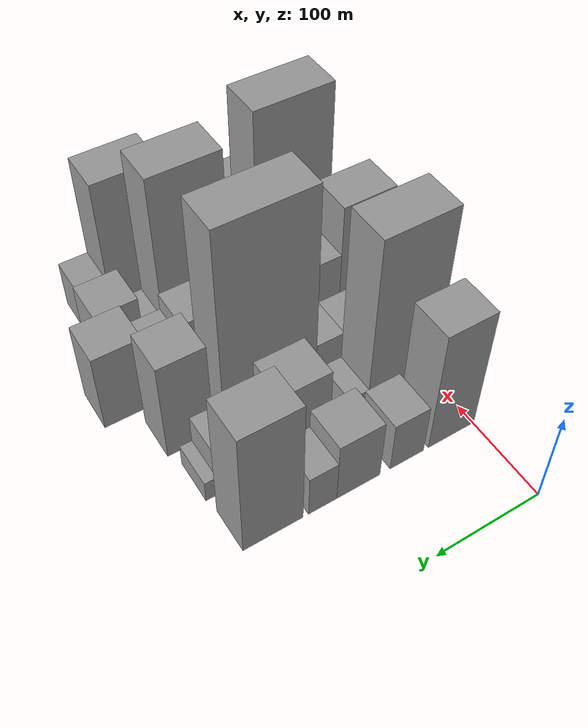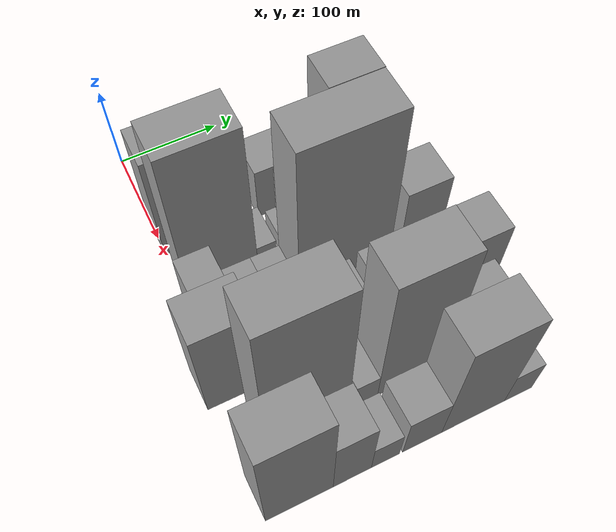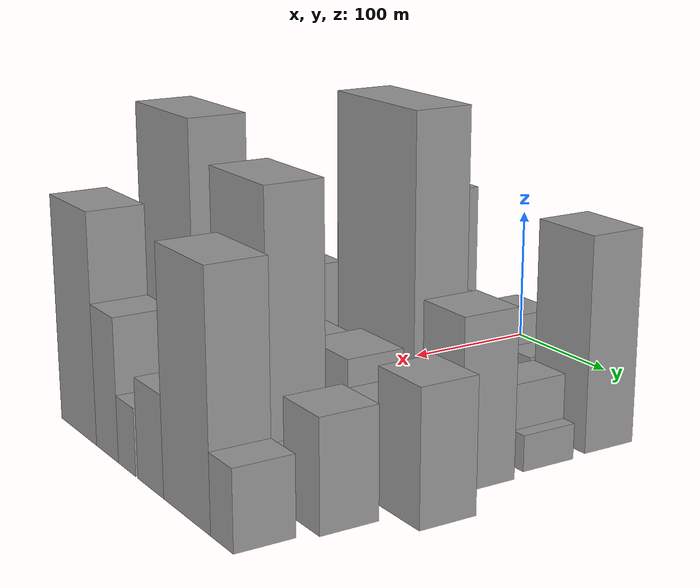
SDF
<sdf version="1.6">
 <world name="default">
  <model name="building_30">
   <static>1</static>
   <pose>100.0000 22.7070 0 0.000000 0.000000 0.000000</pose>
   <link name="link">
    <pose>0 0 69.00 0 0 0</pose>
    <collision name="collision"><geometry><box><size>40.0000 46.8853 138.0000</size></box></geometry></collision>
    <visual name="visual">
     <cast_shadows>0</cast_shadows>
     <geometry><box><size>40.0000 46.8853 138.0000</size></box></geometry>
     <material>
      <script>
       <uri>model://grey_wall/materials/scripts</uri>
       <uri>model://grey_wall/materials/textures</uri>
       <name>vrc/grey_wall</name>
      </script>
     </material>
    </visual>
   </link>
  </model>
  <model name="building_31">
   <static>1</static>
   <pose>100.0000 67.7144 0 0.000000 0.000000 0.000000</pose>
   <link name="link">
    <pose>0 0 28.50 0 0 0</pose>
    <collision name="collision"><geometry><box><size>40.0000 33.1295 57.0000</size></box></geometry></collision>
    <visual name="visual">
     <cast_shadows>0</cast_shadows>
     <geometry><box><size>40.0000 33.1295 57.0000</size></box></geometry>
     <material>
      <script>
       <uri>model://grey_wall/materials/scripts</uri>
       <uri>model://grey_wall/materials/textures</uri>
       <name>vrc/grey_wall</name>
      </script>
     </material>
    </visual>
   </link>
  </model>
  <model name="building_32">
   <static>1</static>
   <pose>100.0000 114.8831 0 0.000000 0.000000 0.000000</pose>
   <link name="link">
    <pose>0 0 34.50 0 0 0</pose>
    <collision name="collision"><geometry><box><size>40.0000 41.2078 69.0000</size></box></geometry></collision>
    <visual name="visual">
     <cast_shadows>0</cast_shadows>
     <geometry><box><size>40.0000 41.2078 69.0000</size></box></geometry>
     <material>
      <script>
       <uri>model://grey_wall/materials/scripts</uri>
       <uri>model://grey_wall/materials/textures</uri>
       <name>vrc/grey_wall</name>
      </script>
     </material>
    </visual>
   </link>
  </model>
  <model name="building_33">
   <static>1</static>
   <pose>100.0000 148.5015 0 0.000000 0.000000 0.000000</pose>
   <link name="link">
    <pose>0 0 24.00 0 0 0</pose>
    <collision name="collision"><geometry><box><size>40.0000 26.0290 48.0000</size></box></geometry></collision>
    <visual name="visual">
     <cast_shadows>0</cast_shadows>
     <geometry><box><size>40.0000 26.0290 48.0000</size></box></geometry>
     <material>
      <script>
       <uri>model://grey_wall/materials/scripts</uri>
       <uri>model://grey_wall/materials/textures</uri>
       <name>vrc/grey_wall</name>
      </script>
     </material>
    </visual>
   </link>
  </model>
  <model name="building_34">
   <static>1</static>
   <pose>100.0000 193.2299 0 0.000000 0.000000 0.000000</pose>
   <link name="link">
    <pose>0 0 72.00 0 0 0</pose>
    <collision name="collision"><geometry><box><size>40.0000 53.4279 144.0000</size></box></geometry></collision>
    <visual name="visual">
     <cast_shadows>0</cast_shadows>
     <geometry><box><size>40.0000 53.4279 144.0000</size></box></geometry>
     <material>
      <script>
       <uri>model://grey_wall/materials/scripts</uri>
       <uri>model://grey_wall/materials/textures</uri>
       <name>vrc/grey_wall</name>
      </script>
     </material>
    </visual>
   </link>
  </model>
  <model name="building_77">
   <static>1</static>
   <pose>152.0000 36.4637 0 0.000000 0.000000 0.000000</pose>
   <link name="link">
    <pose>0 0 102.00 0 0 0</pose>
    <collision name="collision"><geometry><box><size>40.0000 68.4907 204.0000</size></box></geometry></collision>
    <visual name="visual">
     <cast_shadows>0</cast_shadows>
     <geometry><box><size>40.0000 68.4907 204.0000</size></box></geometry>
     <material>
      <script>
       <uri>model://grey_wall/materials/scripts</uri>
       <uri>model://grey_wall/materials/textures</uri>
       <name>vrc/grey_wall</name>
      </script>
     </material>
    </visual>
   </link>
  </model>
  <model name="building_78">
   <static>1</static>
   <pose>152.0000 80.2445 0 0.000000 0.000000 0.000000</pose>
   <link name="link">
    <pose>0 0 18.00 0 0 0</pose>
    <collision name="collision"><geometry><box><size>40.0000 19.0711 36.0000</size></box></geometry></collision>
    <visual name="visual">
     <cast_shadows>0</cast_shadows>
     <geometry><box><size>40.0000 19.0711 36.0000</size></box></geometry>
     <material>
      <script>
       <uri>model://grey_wall/materials/scripts</uri>
       <uri>model://grey_wall/materials/textures</uri>
       <name>vrc/grey_wall</name>
      </script>
     </material>
    </visual>
   </link>
  </model>
  <model name="building_79">
   <static>1</static>
   <pose>152.0000 102.1510 0 0.000000 0.000000 0.000000</pose>
   <link name="link">
    <pose>0 0 12.00 0 0 0</pose>
    <collision name="collision"><geometry><box><size>40.0000 10.7418 24.0000</size></box></geometry></collision>
    <visual name="visual">
     <cast_shadows>0</cast_shadows>
     <geometry><box><size>40.0000 10.7418 24.0000</size></box></geometry>
     <material>
      <script>
       <uri>model://grey_wall/materials/scripts</uri>
       <uri>model://grey_wall/materials/textures</uri>
       <name>vrc/grey_wall</name>
      </script>
     </material>
    </visual>
   </link>
  </model>
  <model name="building_80">
   <static>1</static>
   <pose>152.0000 130.8561 0 0.000000 0.000000 0.000000</pose>
   <link name="link">
    <pose>0 0 42.00 0 0 0</pose>
    <collision name="collision"><geometry><box><size>40.0000 46.6685 84.0000</size></box></geometry></collision>
    <visual name="visual">
     <cast_shadows>0</cast_shadows>
     <geometry><box><size>40.0000 46.6685 84.0000</size></box></geometry>
     <material>
      <script>
       <uri>model://grey_wall/materials/scripts</uri>
       <uri>model://grey_wall/materials/textures</uri>
       <name>vrc/grey_wall</name>
      </script>
     </material>
    </visual>
   </link>
  </model>
  <model name="building_81">
   <static>1</static>
   <pose>152.0000 162.9774 0 0.000000 0.000000 0.000000</pose>
   <link name="link">
    <pose>0 0 15.00 0 0 0</pose>
    <collision name="collision"><geometry><box><size>40.0000 17.5741 30.0000</size></box></geometry></collision>
    <visual name="visual">
     <cast_shadows>0</cast_shadows>
     <geometry><box><size>40.0000 17.5741 30.0000</size></box></geometry>
     <material>
      <script>
       <uri>model://grey_wall/materials/scripts</uri>
       <uri>model://grey_wall/materials/textures</uri>
       <name>vrc/grey_wall</name>
      </script>
     </material>
    </visual>
   </link>
  </model>
  <model name="building_82">
   <static>1</static>
   <pose>152.0000 195.7945 0 0.000000 0.000000 0.000000</pose>
   <link name="link">
    <pose>0 0 27.00 0 0 0</pose>
    <collision name="collision"><geometry><box><size>40.0000 32.0601 54.0000</size></box></geometry></collision>
    <visual name="visual">
     <cast_shadows>0</cast_shadows>
     <geometry><box><size>40.0000 32.0601 54.0000</size></box></geometry>
     <material>
      <script>
       <uri>model://grey_wall/materials/scripts</uri>
       <uri>model://grey_wall/materials/textures</uri>
       <name>vrc/grey_wall</name>
      </script>
     </material>
    </visual>
   </link>
  </model>
  <model name="building_83">
   <static>1</static>
   <pose>152.0000 217.2642 0 0.000000 0.000000 0.000000</pose>
   <link name="link">
    <pose>0 0 12.00 0 0 0</pose>
    <collision name="collision"><geometry><box><size>40.0000 10.8795 24.0000</size></box></geometry></collision>
    <visual name="visual">
     <cast_shadows>0</cast_shadows>
     <geometry><box><size>40.0000 10.8795 24.0000</size></box></geometry>
     <material>
      <script>
       <uri>model://grey_wall/materials/scripts</uri>
       <uri>model://grey_wall/materials/textures</uri>
       <name>vrc/grey_wall</name>
      </script>
     </material>
    </visual>
   </link>
  </model>
  <model name="building_125">
   <static>1</static>
   <pose>204.0000 11.0380 0 0.000000 0.000000 0.000000</pose>
   <link name="link">
    <pose>0 0 46.50 0 0 0</pose>
    <collision name="collision"><geometry><box><size>40.0000 31.4220 93.0000</size></box></geometry></collision>
    <visual name="visual">
     <cast_shadows>0</cast_shadows>
     <geometry><box><size>40.0000 31.4220 93.0000</size></box></geometry>
     <material>
      <script>
       <uri>model://grey_wall/materials/scripts</uri>
       <uri>model://grey_wall/materials/textures</uri>
       <name>vrc/grey_wall</name>
      </script>
     </material>
    </visual>
   </link>
  </model>
  <model name="building_126">
   <static>1</static>
   <pose>204.0000 45.7857 0 0.000000 0.000000 0.000000</pose>
   <link name="link">
    <pose>0 0 24.00 0 0 0</pose>
    <collision name="collision"><geometry><box><size>40.0000 28.0733 48.0000</size></box></geometry></collision>
    <visual name="visual">
     <cast_shadows>0</cast_shadows>
     <geometry><box><size>40.0000 28.0733 48.0000</size></box></geometry>
     <material>
      <script>
       <uri>model://grey_wall/materials/scripts</uri>
       <uri>model://grey_wall/materials/textures</uri>
       <name>vrc/grey_wall</name>
      </script>
     </material>
    </visual>
   </link>
  </model>
  <model name="building_127">
   <static>1</static>
   <pose>204.0000 73.5338 0 0.000000 0.000000 0.000000</pose>
   <link name="link">
    <pose>0 0 24.00 0 0 0</pose>
    <collision name="collision"><geometry><box><size>40.0000 27.4231 48.0000</size></box></geometry></collision>
    <visual name="visual">
     <cast_shadows>0</cast_shadows>
     <geometry><box><size>40.0000 27.4231 48.0000</size></box></geometry>
     <material>
      <script>
       <uri>model://grey_wall/materials/scripts</uri>
       <uri>model://grey_wall/materials/textures</uri>
       <name>vrc/grey_wall</name>
      </script>
     </material>
    </visual>
   </link>
  </model>
  <model name="building_128">
   <static>1</static>
   <pose>204.0000 131.9906 0 0.000000 0.000000 0.000000</pose>
   <link name="link">
    <pose>0 0 112.50 0 0 0</pose>
    <collision name="collision"><geometry><box><size>40.0000 89.4905 225.0000</size></box></geometry></collision>
    <visual name="visual">
     <cast_shadows>0</cast_shadows>
     <geometry><box><size>40.0000 89.4905 225.0000</size></box></geometry>
     <material>
      <script>
       <uri>model://grey_wall/materials/scripts</uri>
       <uri>model://grey_wall/materials/textures</uri>
       <name>vrc/grey_wall</name>
      </script>
     </material>
    </visual>
   </link>
  </model>
  <model name="building_129">
   <static>1</static>
   <pose>204.0000 207.8987 0 0.000000 0.000000 0.000000</pose>
   <link name="link">
    <pose>0 0 55.50 0 0 0</pose>
    <collision name="collision"><geometry><box><size>40.0000 42.3256 111.0000</size></box></geometry></collision>
    <visual name="visual">
     <cast_shadows>0</cast_shadows>
     <geometry><box><size>40.0000 42.3256 111.0000</size></box></geometry>
     <material>
      <script>
       <uri>model://grey_wall/materials/scripts</uri>
       <uri>model://grey_wall/materials/textures</uri>
       <name>vrc/grey_wall</name>
      </script>
     </material>
    </visual>
   </link>
  </model>
  <model name="building_171">
   <static>1</static>
   <pose>256.0000 2.6403 0 0.000000 0.000000 0.000000</pose>
   <link name="link">
    <pose>0 0 66.00 0 0 0</pose>
    <collision name="collision"><geometry><box><size>40.0000 52.7900 132.0000</size></box></geometry></collision>
    <visual name="visual">
     <cast_shadows>0</cast_shadows>
     <geometry><box><size>40.0000 52.7900 132.0000</size></box></geometry>
     <material>
      <script>
       <uri>model://grey_wall/materials/scripts</uri>
       <uri>model://grey_wall/materials/textures</uri>
       <name>vrc/grey_wall</name>
      </script>
     </material>
    </visual>
   </link>
  </model>
  <model name="building_172">
   <static>1</static>
   <pose>256.0000 49.2573 0 0.000000 0.000000 0.000000</pose>
   <link name="link">
    <pose>0 0 39.00 0 0 0</pose>
    <collision name="collision"><geometry><box><size>40.0000 40.4439 78.0000</size></box></geometry></collision>
    <visual name="visual">
     <cast_shadows>0</cast_shadows>
     <geometry><box><size>40.0000 40.4439 78.0000</size></box></geometry>
     <material>
      <script>
       <uri>model://grey_wall/materials/scripts</uri>
       <uri>model://grey_wall/materials/textures</uri>
       <name>vrc/grey_wall</name>
      </script>
     </material>
    </visual>
   </link>
  </model>
  <model name="building_173">
   <static>1</static>
   <pose>256.0000 77.7091 0 0.000000 0.000000 0.000000</pose>
   <link name="link">
    <pose>0 0 15.00 0 0 0</pose>
    <collision name="collision"><geometry><box><size>40.0000 16.4597 30.0000</size></box></geometry></collision>
    <visual name="visual">
     <cast_shadows>0</cast_shadows>
     <geometry><box><size>40.0000 16.4597 30.0000</size></box></geometry>
     <material>
      <script>
       <uri>model://grey_wall/materials/scripts</uri>
       <uri>model://grey_wall/materials/textures</uri>
       <name>vrc/grey_wall</name>
      </script>
     </material>
    </visual>
   </link>
  </model>
  <model name="building_174">
   <static>1</static>
   <pose>256.0000 106.9153 0 0.000000 0.000000 0.000000</pose>
   <link name="link">
    <pose>0 0 37.50 0 0 0</pose>
    <collision name="collision"><geometry><box><size>40.0000 41.9527 75.0000</size></box></geometry></collision>
    <visual name="visual">
     <cast_shadows>0</cast_shadows>
     <geometry><box><size>40.0000 41.9527 75.0000</size></box></geometry>
     <material>
      <script>
       <uri>model://grey_wall/materials/scripts</uri>
       <uri>model://grey_wall/materials/textures</uri>
       <name>vrc/grey_wall</name>
      </script>
     </material>
    </visual>
   </link>
  </model>
  <model name="building_175">
   <static>1</static>
   <pose>256.0000 158.7734 0 0.000000 0.000000 0.000000</pose>
   <link name="link">
    <pose>0 0 40.50 0 0 0</pose>
    <collision name="collision"><geometry><box><size>40.0000 47.7634 81.0000</size></box></geometry></collision>
    <visual name="visual">
     <cast_shadows>0</cast_shadows>
     <geometry><box><size>40.0000 47.7634 81.0000</size></box></geometry>
     <material>
      <script>
       <uri>model://grey_wall/materials/scripts</uri>
       <uri>model://grey_wall/materials/textures</uri>
       <name>vrc/grey_wall</name>
      </script>
     </material>
    </visual>
   </link>
  </model>
  <model name="building_176">
   <static>1</static>
   <pose>256.0000 199.4659 0 0.000000 0.000000 0.000000</pose>
   <link name="link">
    <pose>0 0 31.50 0 0 0</pose>
    <collision name="collision"><geometry><box><size>40.0000 33.6218 63.0000</size></box></geometry></collision>
    <visual name="visual">
     <cast_shadows>0</cast_shadows>
     <geometry><box><size>40.0000 33.6218 63.0000</size></box></geometry>
     <material>
      <script>
       <uri>model://grey_wall/materials/scripts</uri>
       <uri>model://grey_wall/materials/textures</uri>
       <name>vrc/grey_wall</name>
      </script>
     </material>
    </visual>
   </link>
  </model>
  <model name="building_177">
   <static>1</static>
   <pose>256.0000 238.1404 0 0.000000 0.000000 0.000000</pose>
   <link name="link">
    <pose>0 0 43.50 0 0 0</pose>
    <collision name="collision"><geometry><box><size>40.0000 43.7272 87.0000</size></box></geometry></collision>
    <visual name="visual">
     <cast_shadows>0</cast_shadows>
     <geometry><box><size>40.0000 43.7272 87.0000</size></box></geometry>
     <material>
      <script>
       <uri>model://grey_wall/materials/scripts</uri>
       <uri>model://grey_wall/materials/textures</uri>
       <name>vrc/grey_wall</name>
      </script>
     </material>
    </visual>
   </link>
  </model>
  <model name="building_220">
   <static>1</static>
   <pose>308.0000 44.4299 0 0.000000 0.000000 0.000000</pose>
   <link name="link">
    <pose>0 0 108.00 0 0 0</pose>
    <collision name="collision"><geometry><box><size>40.0000 75.6467 216.0000</size></box></geometry></collision>
    <visual name="visual">
     <cast_shadows>0</cast_shadows>
     <geometry><box><size>40.0000 75.6467 216.0000</size></box></geometry>
     <material>
      <script>
       <uri>model://grey_wall/materials/scripts</uri>
       <uri>model://grey_wall/materials/textures</uri>
       <name>vrc/grey_wall</name>
      </script>
     </material>
    </visual>
   </link>
  </model>
  <model name="building_221">
   <static>1</static>
   <pose>308.0000 98.9404 0 0.000000 0.000000 0.000000</pose>
   <link name="link">
    <pose>0 0 19.50 0 0 0</pose>
    <collision name="collision"><geometry><box><size>40.0000 21.3744 39.0000</size></box></geometry></collision>
    <visual name="visual">
     <cast_shadows>0</cast_shadows>
     <geometry><box><size>40.0000 21.3744 39.0000</size></box></geometry>
     <material>
      <script>
       <uri>model://grey_wall/materials/scripts</uri>
       <uri>model://grey_wall/materials/textures</uri>
       <name>vrc/grey_wall</name>
      </script>
     </material>
    </visual>
   </link>
  </model>
  <model name="building_222">
   <static>1</static>
   <pose>308.0000 143.1758 0 0.000000 0.000000 0.000000</pose>
   <link name="link">
    <pose>0 0 96.00 0 0 0</pose>
    <collision name="collision"><geometry><box><size>40.0000 67.0963 192.0000</size></box></geometry></collision>
    <visual name="visual">
     <cast_shadows>0</cast_shadows>
     <geometry><box><size>40.0000 67.0963 192.0000</size></box></geometry>
     <material>
      <script>
       <uri>model://grey_wall/materials/scripts</uri>
       <uri>model://grey_wall/materials/textures</uri>
       <name>vrc/grey_wall</name>
      </script>
     </material>
    </visual>
   </link>
  </model>
  <model name="building_223">
   <static>1</static>
   <pose>308.0000 186.3590 0 0.000000 0.000000 0.000000</pose>
   <link name="link">
    <pose>0 0 18.00 0 0 0</pose>
    <collision name="collision"><geometry><box><size>40.0000 19.2700 36.0000</size></box></geometry></collision>
    <visual name="visual">
     <cast_shadows>0</cast_shadows>
     <geometry><box><size>40.0000 19.2700 36.0000</size></box></geometry>
     <material>
      <script>
       <uri>model://grey_wall/materials/scripts</uri>
       <uri>model://grey_wall/materials/textures</uri>
       <name>vrc/grey_wall</name>
      </script>
     </material>
    </visual>
   </link>
  </model>
  <model name="building_224">
   <static>1</static>
   <pose>308.0000 216.0818 0 0.000000 0.000000 0.000000</pose>
   <link name="link">
    <pose>0 0 36.00 0 0 0</pose>
    <collision name="collision"><geometry><box><size>40.0000 40.1757 72.0000</size></box></geometry></collision>
    <visual name="visual">
     <cast_shadows>0</cast_shadows>
     <geometry><box><size>40.0000 40.1757 72.0000</size></box></geometry>
     <material>
      <script>
       <uri>model://grey_wall/materials/scripts</uri>
       <uri>model://grey_wall/materials/textures</uri>
       <name>vrc/grey_wall</name>
      </script>
     </material>
    </visual>
   </link>
  </model>
  <model name="building_263">
   <static>1</static>
   <pose>360.0000 10.9923 0 0.000000 0.000000 0.000000</pose>
   <link name="link">
    <pose>0 0 78.00 0 0 0</pose>
    <collision name="collision"><geometry><box><size>40.0000 59.6371 156.0000</size></box></geometry></collision>
    <visual name="visual">
     <cast_shadows>0</cast_shadows>
     <geometry><box><size>40.0000 59.6371 156.0000</size></box></geometry>
     <material>
      <script>
       <uri>model://grey_wall/materials/scripts</uri>
       <uri>model://grey_wall/materials/textures</uri>
       <name>vrc/grey_wall</name>
      </script>
     </material>
    </visual>
   </link>
  </model>
  <model name="building_264">
   <static>1</static>
   <pose>360.0000 58.1134 0 0.000000 0.000000 0.000000</pose>
   <link name="link">
    <pose>0 0 48.00 0 0 0</pose>
    <collision name="collision"><geometry><box><size>40.0000 34.6051 96.0000</size></box></geometry></collision>
    <visual name="visual">
     <cast_shadows>0</cast_shadows>
     <geometry><box><size>40.0000 34.6051 96.0000</size></box></geometry>
     <material>
      <script>
       <uri>model://grey_wall/materials/scripts</uri>
       <uri>model://grey_wall/materials/textures</uri>
       <name>vrc/grey_wall</name>
      </script>
     </material>
    </visual>
   </link>
  </model>
  <model name="building_265">
   <static>1</static>
   <pose>360.0000 88.4481 0 0.000000 0.000000 0.000000</pose>
   <link name="link">
    <pose>0 0 22.50 0 0 0</pose>
    <collision name="collision"><geometry><box><size>40.0000 26.0644 45.0000</size></box></geometry></collision>
    <visual name="visual">
     <cast_shadows>0</cast_shadows>
     <geometry><box><size>40.0000 26.0644 45.0000</size></box></geometry>
     <material>
      <script>
       <uri>model://grey_wall/materials/scripts</uri>
       <uri>model://grey_wall/materials/textures</uri>
       <name>vrc/grey_wall</name>
      </script>
     </material>
    </visual>
   </link>
  </model>
  <model name="building_266">
   <static>1</static>
   <pose>360.0000 122.9560 0 0.000000 0.000000 0.000000</pose>
   <link name="link">
    <pose>0 0 33.00 0 0 0</pose>
    <collision name="collision"><geometry><box><size>40.0000 36.9513 66.0000</size></box></geometry></collision>
    <visual name="visual">
     <cast_shadows>0</cast_shadows>
     <geometry><box><size>40.0000 36.9513 66.0000</size></box></geometry>
     <material>
      <script>
       <uri>model://grey_wall/materials/scripts</uri>
       <uri>model://grey_wall/materials/textures</uri>
       <name>vrc/grey_wall</name>
      </script>
     </material>
    </visual>
   </link>
  </model>
  <model name="building_267">
   <static>1</static>
   <pose>360.0000 172.0749 0 0.000000 0.000000 0.000000</pose>
   <link name="link">
    <pose>0 0 79.50 0 0 0</pose>
    <collision name="collision"><geometry><box><size>40.0000 61.2865 159.0000</size></box></geometry></collision>
    <visual name="visual">
     <cast_shadows>0</cast_shadows>
     <geometry><box><size>40.0000 61.2865 159.0000</size></box></geometry>
     <material>
      <script>
       <uri>model://grey_wall/materials/scripts</uri>
       <uri>model://grey_wall/materials/textures</uri>
       <name>vrc/grey_wall</name>
      </script>
     </material>
    </visual>
   </link>
  </model>
  <model name="building_268">
   <static>1</static>
   <pose>360.0000 216.5116 0 0.000000 0.000000 0.000000</pose>
   <link name="link">
    <pose>0 0 25.50 0 0 0</pose>
    <collision name="collision"><geometry><box><size>40.0000 27.5870 51.0000</size></box></geometry></collision>
    <visual name="visual">
     <cast_shadows>0</cast_shadows>
     <geometry><box><size>40.0000 27.5870 51.0000</size></box></geometry>
     <material>
      <script>
       <uri>model://grey_wall/materials/scripts</uri>
       <uri>model://grey_wall/materials/textures</uri>
       <name>vrc/grey_wall</name>
      </script>
     </material>
    </visual>
   </link>
  </model>
 </world>
</sdf>
